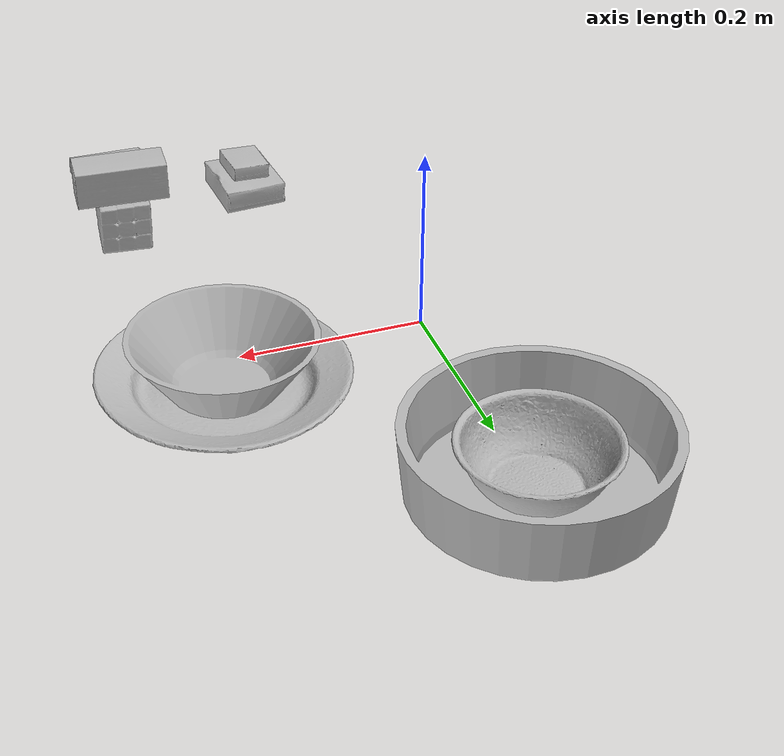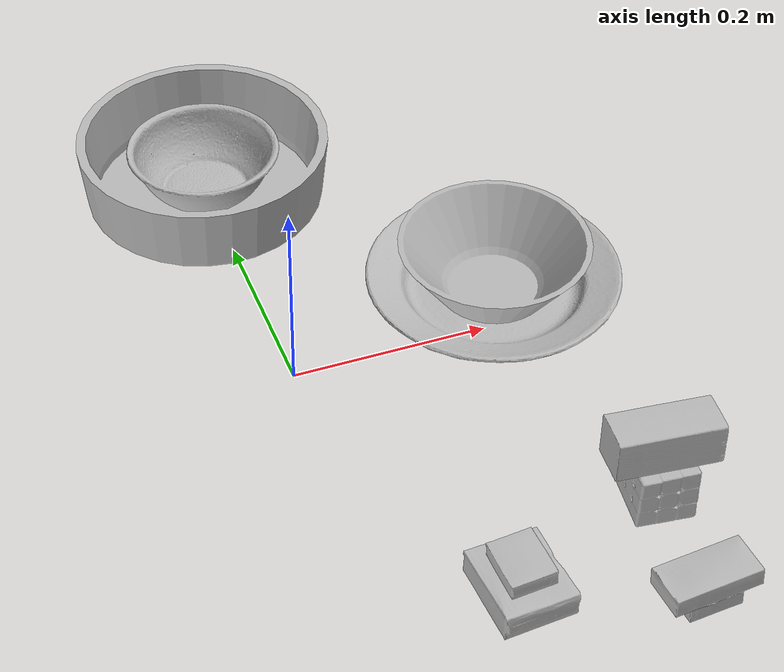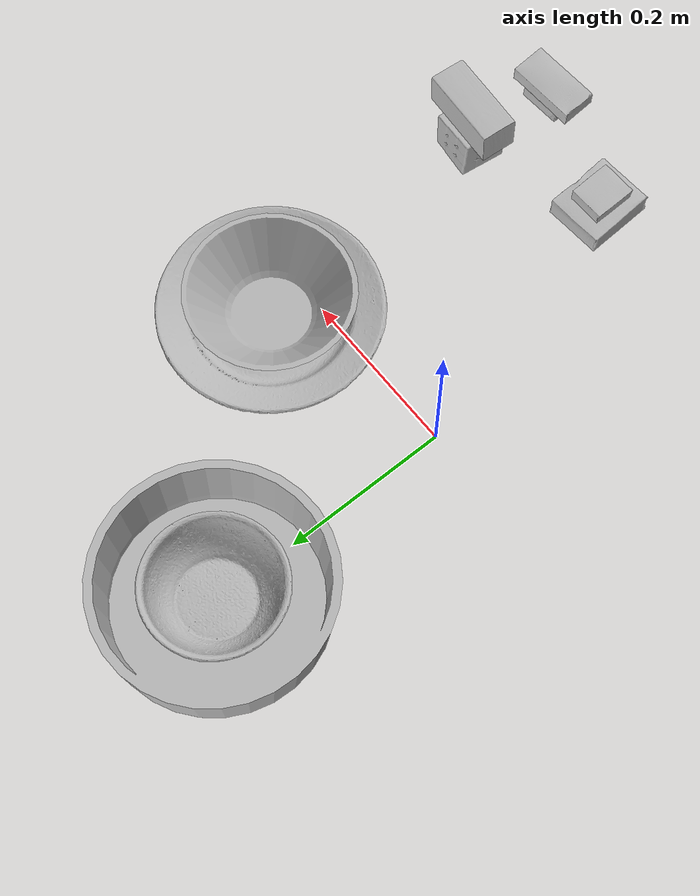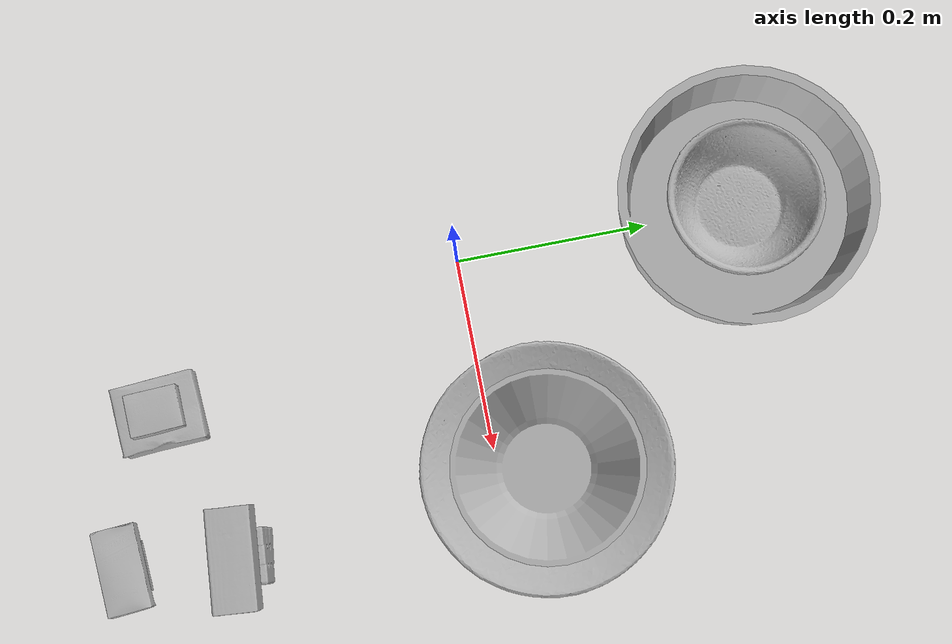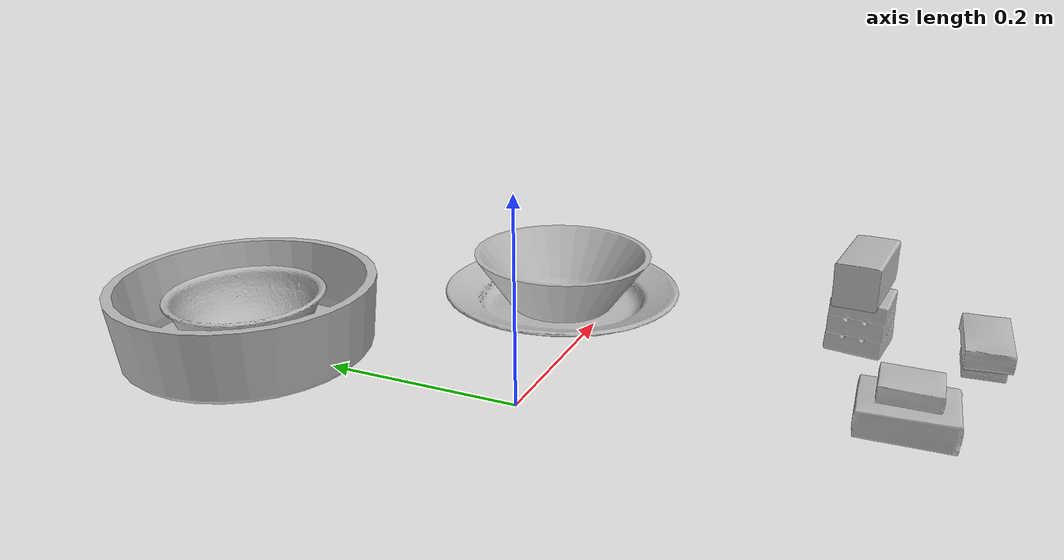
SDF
<?xml version="1.0" ?>
<sdf version="1.4">
  <world name="default">
    <light name="light1" type="point">
      <pose>0 0 1 0 0 0</pose>
      <diffuse>3 3 3 1</diffuse>
      <specular>3 3 3 1</specular>
    </light>
    <light name="light2" type="point">
      <pose>0 0.5 2 0 0 0</pose>
      <diffuse>1 1 1 1</diffuse>
      <specular>1 1 1 1</specular>
    </light>
    <light name="light3" type="point">
      <pose>0 0.5 2 0 0 0</pose>
      <diffuse>3 3 3 1</diffuse>
      <specular>3 3 3 1</specular>
    </light>
    <scene>
      <ambient>0.7 0.7 0.7</ambient>
    </scene>
    <model name="box1">
      <link name="link_box1">
        <collision name="default">
          <geometry>
            <mesh>
              <uri>model://gelatin_box/collision_meshes/collision.obj</uri>
              <scale>1.0 1.0 1.0</scale>
            </mesh>
          </geometry>
          <surface>
            <friction>
              <ode>
                <mu>0.5</mu>
                <mu2>0.5</mu2>
              </ode>
            </friction>
          </surface>
        </collision>
        <visual name="default">
          <geometry>
            <mesh>
              <uri>model://gelatin_box/visual_meshes/visual.dae</uri>
              <scale>1.0 1.0 1.0</scale>
            </mesh>
          </geometry>
        </visual>
        <inertial>
          <mass>0.24885821342468262</mass>
          <pose>0.0004319618456065655 0.00011156872642459348 -0.0003640321083366871 -0.0010503721884538221 -0.004755817759936981 0.016440553883063976</pose>
          <inertia>
            <ixx>0.0001756736</ixx>
            <iyy>0.00012548274</iyy>
            <izz>0.00026741438</izz>
            <ixy>0</ixy>
            <ixz>0</ixz>
            <iyz>0</iyz>
          </inertia>
        </inertial>
      </link>
      <pose>0.0999603345990181 -0.33007723093032837 0.01516831573098898 0.005597469098512656 -0.007304528987465011 0.052303091725107935</pose>
    </model>
    <model name="box11">
      <link name="link_box11">
        <collision name="default">
          <geometry>
            <mesh>
              <uri>model://pudding_box/collision_meshes/collision.obj</uri>
              <scale>0.5 0.5 0.5</scale>
            </mesh>
          </geometry>
          <surface>
            <friction>
              <ode>
                <mu>0.5</mu>
                <mu2>0.5</mu2>
              </ode>
            </friction>
          </surface>
        </collision>
        <visual name="default">
          <geometry>
            <mesh>
              <uri>model://pudding_box/visual_meshes/visual.dae</uri>
              <scale>0.5 0.5 0.5</scale>
            </mesh>
          </geometry>
        </visual>
        <inertial>
          <mass>0.031047143042087555</mass>
          <pose>0.00024474109522998333 0.00040339428232982755 -0.0002594413817860186 0.005213102716306955 -0.006603798272123425 0.020079828883677098</pose>
          <inertia>
            <ixx>8.774299e-06</ixx>
            <iyy>5.903411e-06</iyy>
            <izz>1.2957546e-05</izz>
            <ixy>0</ixy>
            <ixz>0</ixz>
            <iyz>0</iyz>
          </inertia>
        </inertial>
      </link>
      <pose>0.09934618324041367 -0.3298877775669098 0.03960426151752472 0.012489464118030244 -0.04449785315902143 0.04421134598083852</pose>
    </model>
    <model name="box2">
      <link name="link_box2">
        <collision name="default">
          <geometry>
            <mesh>
              <uri>model://rubiks_cube/collision_meshes/collision.obj</uri>
              <scale>1.0 1.0 1.0</scale>
            </mesh>
          </geometry>
          <surface>
            <friction>
              <ode>
                <mu>0.5</mu>
                <mu2>0.5</mu2>
              </ode>
            </friction>
          </surface>
        </collision>
        <visual name="default">
          <geometry>
            <mesh>
              <uri>model://rubiks_cube/visual_meshes/visual.dae</uri>
              <scale>1.0 1.0 1.0</scale>
            </mesh>
          </geometry>
        </visual>
        <inertial>
          <mass>0.2106715589761734</mass>
          <pose>2.6721041649580002e-05 5.2569666877388954e-05 -7.264316536748083e-06 -0.05467273700930805 -0.09814071961497198 -0.03445608496414611</pose>
          <inertia>
            <ixx>0.0001164102</ixx>
            <iyy>0.000115867326</iyy>
            <izz>0.00011737483</izz>
            <ixy>0</ixy>
            <ixz>0</ixz>
            <iyz>0</iyz>
          </inertia>
        </inertial>
      </link>
      <pose>0.2599129378795624 -0.27022090554237366 0.028678996488451958 -2.7872060214667993e-06 8.876155260101576e-07 -0.08229691675335596</pose>
    </model>
    <model name="box21">
      <link name="link_box21">
        <collision name="default">
          <geometry>
            <mesh>
              <uri>model://wood_block/collision_meshes/collision.obj</uri>
              <scale>0.5 0.5 0.5</scale>
            </mesh>
          </geometry>
          <surface>
            <friction>
              <ode>
                <mu>0.5</mu>
                <mu2>0.5</mu2>
              </ode>
            </friction>
          </surface>
        </collision>
        <visual name="default">
          <geometry>
            <mesh>
              <uri>model://wood_block/visual_meshes/visual.dae</uri>
              <scale>0.5 0.5 0.5</scale>
            </mesh>
          </geometry>
        </visual>
        <inertial>
          <mass>0.146076962351799</mass>
          <pose>-2.9066577553749084e-06 -0.000285404734313488 0.00013204291462898254 -0.052208177866913126 -0.0051926955252411455 -0.006861378006552687</pose>
          <inertia>
            <ixx>4.8868267e-05</ixx>
            <iyy>0.00015437487</iyy>
            <izz>0.00015379742</izz>
            <ixy>0</ixy>
            <ixz>0</ixz>
            <iyz>0</iyz>
          </inertia>
        </inertial>
      </link>
      <pose>0.26051148772239685 -0.2692018449306488 0.08032649755477905 -0.012156111368347355 0.01761306276035548 -0.08171812024254538</pose>
    </model>
    <model name="box3">
      <link name="link_box3">
        <collision name="default">
          <geometry>
            <mesh>
              <uri>model://cracker_box/collision_meshes/collision.obj</uri>
              <scale>0.25 0.25 0.25</scale>
            </mesh>
          </geometry>
          <surface>
            <friction>
              <ode>
                <mu>0.5</mu>
                <mu2>0.5</mu2>
              </ode>
            </friction>
          </surface>
        </collision>
        <visual name="default">
          <geometry>
            <mesh>
              <uri>model://cracker_box/visual_meshes/visual.dae</uri>
              <scale>0.25 0.25 0.25</scale>
            </mesh>
          </geometry>
        </visual>
        <inertial>
          <mass>0.0398951955139637</mass>
          <pose>0.0002366032567806542 6.358561950037256e-05 -0.0004257383698131889 -0.00031620768741309833 -0.011106487737478729 0.0025467957005107203</pose>
          <inertia>
            <ixx>6.342223e-06</ixx>
            <iyy>1.0472255e-05</iyy>
            <izz>1.494487e-05</izz>
            <ixy>0</ixy>
            <ixz>0</ixz>
            <iyz>0</iyz>
          </inertia>
        </inertial>
      </link>
      <pose>0.25000014901161194 -0.389821320772171 0.009119799360632896 -0.0117107306895869 -0.007366935482561262 0.06258638265446317</pose>
    </model>
    <model name="box31">
      <link name="link_box31">
        <collision name="default">
          <geometry>
            <mesh>
              <uri>model://sugar_box/collision_meshes/collision.obj</uri>
              <scale>0.5 0.5 0.5</scale>
            </mesh>
          </geometry>
          <surface>
            <friction>
              <ode>
                <mu>0.5</mu>
                <mu2>0.5</mu2>
              </ode>
            </friction>
          </surface>
        </collision>
        <visual name="default">
          <geometry>
            <mesh>
              <uri>model://sugar_box/visual_meshes/visual.dae</uri>
              <scale>0.5 0.5 0.5</scale>
            </mesh>
          </geometry>
        </visual>
        <inertial>
          <mass>0.051384337246418</mass>
          <pose>0.0005171863595023751 1.924554817378521e-05 -0.00018182402709499002 -0.00040462574757428057 0.0010506634050244472 0.0026153787892360275</pose>
          <inertia>
            <ixx>1.070332e-05</ixx>
            <iyy>3.4595334e-05</iyy>
            <izz>4.1414743e-05</izz>
            <ixy>0</ixy>
            <ixz>0</ixz>
            <iyz>0</iyz>
          </inertia>
        </inertial>
      </link>
      <pose>0.24938441812992096 -0.3895707130432129 0.02931431494653225 -0.014953679398844651 -0.04343146562152959 0.06573728378603703</pose>
    </model>
    <model name="plate1">
      <link name="link_plate1">
        <collision name="default">
          <geometry>
            <mesh>
              <uri>model://plate/collision_meshes/collision.obj</uri>
              <scale>1.0 1.0 1.0</scale>
            </mesh>
          </geometry>
          <surface>
            <friction>
              <ode>
                <mu>0.5</mu>
                <mu2>0.5</mu2>
              </ode>
            </friction>
          </surface>
        </collision>
        <visual name="default">
          <geometry>
            <mesh>
              <uri>model://plate/visual_meshes/visual.dae</uri>
              <scale>1.0 1.0 1.0</scale>
            </mesh>
          </geometry>
        </visual>
        <inertial>
          <mass>0.18845537304878235</mass>
          <pose>-0.0006044640904292464 0.00027825849247165024 -0.0010561994276940823 0.0022188128524267426 -0.0032254640251278745 0.45260123674794867</pose>
          <inertia>
            <ixx>0.0008815983</ixx>
            <iyy>0.00087316614</iyy>
            <izz>0.001724274</izz>
            <ixy>0</ixy>
            <ixz>0</ixz>
            <iyz>0</iyz>
          </inertia>
        </inertial>
      </link>
      <pose>0.22999994456768036 0.050000034272670746 0.0137333320453763 8.66904388972978e-07 -5.376919363608072e-06 -0.03784024526387869</pose>
    </model>
    <model name="bowl1">
      <link name="link_bowl1">
        <collision name="default">
          <geometry>
            <mesh>
              <uri>model://bowl_a/collision_meshes/collision.obj</uri>
              <scale>1.0 1.0 1.0</scale>
            </mesh>
          </geometry>
          <surface>
            <friction>
              <ode>
                <mu>0.5</mu>
                <mu2>0.5</mu2>
              </ode>
            </friction>
          </surface>
        </collision>
        <visual name="default">
          <geometry>
            <mesh>
              <uri>model://bowl_a/visual_meshes/visual.dae</uri>
              <scale>1.0 1.0 1.0</scale>
            </mesh>
          </geometry>
        </visual>
        <inertial>
          <mass>0.46761196851730347</mass>
          <pose>0.0002786737459246069 4.731199442176148e-05 -0.0013765295734629035 -0.0009805421566516771 -0.0010938164969012795 -0.19123134440759623</pose>
          <inertia>
            <ixx>0.0013313128</ixx>
            <iyy>0.0013394863</iyy>
            <izz>0.0023677913</izz>
            <ixy>0</ixy>
            <ixz>0</ixz>
            <iyz>0</iyz>
          </inertia>
        </inertial>
      </link>
      <pose>0.22994494438171387 0.04960842430591583 0.03478574380278587 0.012221021592067192 -0.0045506388478682115 0.2215061723081578</pose>
    </model>
    <model name="plate2">
      <link name="link_plate2">
        <collision name="default">
          <geometry>
            <mesh>
              <uri>model://pan_tefal/collision_meshes/collision.obj</uri>
              <scale>1.0 1.0 1.0</scale>
            </mesh>
          </geometry>
          <surface>
            <friction>
              <ode>
                <mu>0.5</mu>
                <mu2>0.5</mu2>
              </ode>
            </friction>
          </surface>
        </collision>
        <visual name="default">
          <geometry>
            <mesh>
              <uri>model://pan_tefal/visual_meshes/visual.dae</uri>
              <scale>1.0 1.0 1.0</scale>
            </mesh>
          </geometry>
        </visual>
        <inertial>
          <mass>0.7360396385192871</mass>
          <pose>-0.00018002057913690805 3.2791922421893105e-05 -0.00851493515074253 0.0008190284364517867 -0.0003301440136962699 -0.3318532577359739</pose>
          <inertia>
            <ixx>0.0050808466</ixx>
            <iyy>0.005113603</iyy>
            <izz>0.00935286</izz>
            <ixy>0</ixy>
            <ixz>0</ixz>
            <iyz>0</iyz>
          </inertia>
        </inertial>
      </link>
      <pose>2.0954757928848267e-09 0.30000004172325134 0.038050003349781036 -1.1892884998695747e-08 5.4358834485092434e-09 0.0451681946127025</pose>
    </model>
    <model name="bowl2">
      <link name="link_bowl2">
        <collision name="default">
          <geometry>
            <mesh>
              <uri>model://bowl/collision_meshes/collision.obj</uri>
              <scale>1.0 1.0 1.0</scale>
            </mesh>
          </geometry>
          <surface>
            <friction>
              <ode>
                <mu>0.5</mu>
                <mu2>0.5</mu2>
              </ode>
            </friction>
          </surface>
        </collision>
        <visual name="default">
          <geometry>
            <mesh>
              <uri>model://bowl/visual_meshes/visual.dae</uri>
              <scale>1.0 1.0 1.0</scale>
            </mesh>
          </geometry>
        </visual>
        <inertial>
          <mass>0.11974068731069565</mass>
          <pose>0.00020445311383809894 -0.0010302052833139896 -0.0008042640401981771 -0.015764214972767723 0.014546668027170537 0.7140316235505751</pose>
          <inertia>
            <ixx>0.00027505384</ixx>
            <iyy>0.000268908</iyy>
            <izz>0.00046273507</izz>
            <ixy>0</ixy>
            <ixz>0</ixz>
            <iyz>0</iyz>
          </inertia>
        </inertial>
      </link>
      <pose>-2.0684776245616376e-05 0.3000291883945465 0.035534054040908813 -0.0010348834288091949 -0.0008106925365664692 -0.04397325611995342</pose>
    </model>
  </world>
</sdf>
